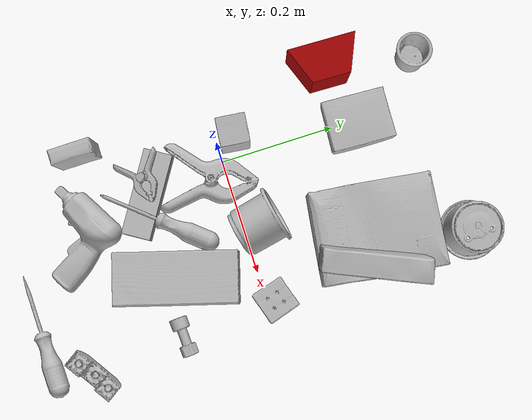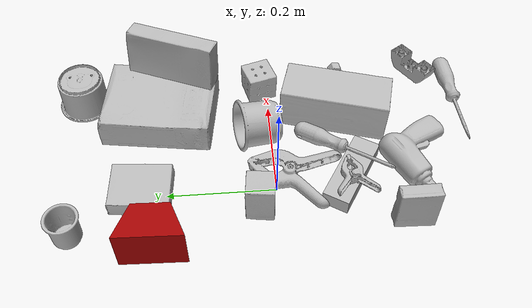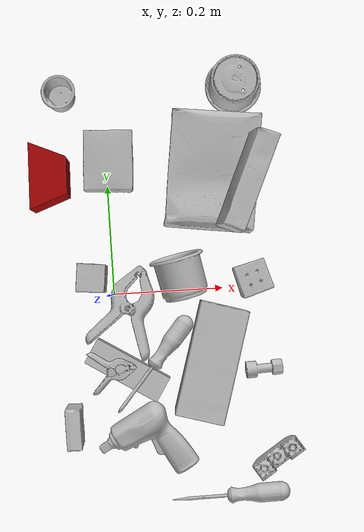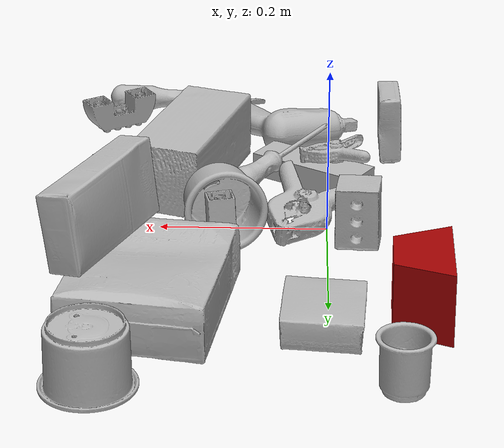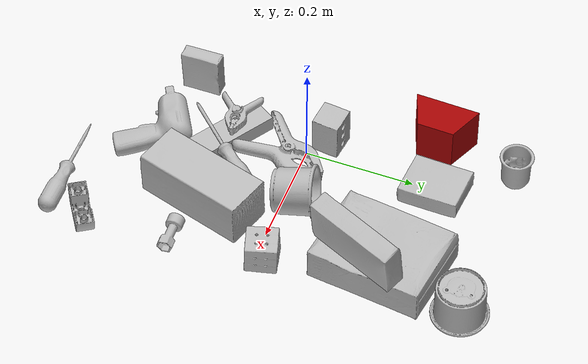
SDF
<sdf version="1.4">
  <world name="default">
    <light name="light1" type="point">
      <pose>0 0 1 0 0 0</pose>
      <diffuse>3 3 3 1</diffuse>
      <specular>3 3 3 1</specular>
    </light>
    <light name="light2" type="point">
      <pose>0 0.5 2 0 0 0</pose>
      <diffuse>1 1 1 1</diffuse>
      <specular>1 1 1 1</specular>
    </light>
    <light name="light3" type="point">
      <pose>0 0.5 2 0 0 0</pose>
      <diffuse>3 3 3 1</diffuse>
      <specular>3 3 3 1</specular>
    </light>
    <scene>
      <ambient>0.7 0.7 0.7</ambient>
    </scene>
    <model name="box21">
      <link name="link_box21">
        <collision name="default">
          <geometry>
            <mesh>
              <uri>model://cracker_box/collision_meshes/collision.obj</uri>
              <scale>1.0 1.0 1.0</scale>
            </mesh>
          </geometry>
          <surface>
            <friction>
              <ode>
                <mu>0.5</mu>
                <mu2>0.5</mu2>
              </ode>
            </friction>
          <contact>
        <ode>
            <max_vel>0</max_vel>
            <min_depth>0.0001</min_depth>
            <kp>1e8</kp>
        </ode>
    </contact></surface>
        </collision>
        <visual name="default">
          <geometry>
            <mesh>
              <uri>model://cracker_box/visual_meshes/visual.dae</uri>
              <scale>1.0 1.0 1.0</scale>
            </mesh>
          </geometry>
        </visual>
        <inertial>
          <mass>3.1344146728515625</mass>
          <pose>0.0009464123286306858 0.00025434247800149024 -0.0017029535956680775 -0.0003162077429326042 -0.011106488668875016 0.0025467950024750923</pose>
          <inertia>
            <ixx>0.0079725515</ixx>
            <iyy>0.01316425</iyy>
            <izz>0.01878659</izz>
            <ixy>0</ixy>
            <ixz>0</ixz>
            <iyz>0</iyz>
          </inertia>
        </inertial>
      </link>
      <pose>0.19378407299518585 0.21293425559997559 0.03640426695346832 -0.012429169213967476 -0.004437675405164345 1.4349709937104405</pose>
    </model>
    <model name="box22">
      <link name="link_box22">
        <collision name="default">
          <geometry>
            <mesh>
              <uri>model://jenga/collision_meshes/collision.obj</uri>
              <scale>1.0 1.0 1.0</scale>
            </mesh>
          </geometry>
          <surface>
            <friction>
              <ode>
                <mu>0.5</mu>
                <mu2>0.5</mu2>
              </ode>
            </friction>
          <contact>
        <ode>
            <max_vel>0</max_vel>
            <min_depth>0.0001</min_depth>
            <kp>1e8</kp>
        </ode>
    </contact></surface>
        </collision>
        <visual name="default">
          <geometry>
            <mesh>
              <uri>model://jenga/visual_meshes/visual.dae</uri>
              <scale>1.0 1.0 1.0</scale>
            </mesh>
          </geometry>
        </visual>
        <inertial>
          <mass>0.23869852721691132</mass>
          <pose>-2.502855807051674e-07 -0.0001025000965455547 -4.092339804628864e-05 0.0 -7.34215461761844e-07 0.0</pose>
          <inertia>
            <ixx>6.605367e-05</ixx>
            <iyy>0.00044757788</iyy>
            <izz>0.00047782745</izz>
            <ixy>0</ixy>
            <ixz>0</ixz>
            <iyz>0</iyz>
          </inertia>
        </inertial>
      </link>
      <pose>0.016384301707148552 -0.1386266052722931 0.014999989420175552 -3.1415920674941344 3.960022561069049e-07 2.5799689146695797</pose>
    </model>
    <model name="box23">
      <link name="link_box23">
        <collision name="default">
          <geometry>
            <mesh>
              <uri>model://rubiks_cube/collision_meshes/collision.obj</uri>
              <scale>1.0 1.0 1.0</scale>
            </mesh>
          </geometry>
          <surface>
            <friction>
              <ode>
                <mu>0.5</mu>
                <mu2>0.5</mu2>
              </ode>
            </friction>
          <contact>
        <ode>
            <max_vel>0</max_vel>
            <min_depth>0.0001</min_depth>
            <kp>1e8</kp>
        </ode>
    </contact></surface>
        </collision>
        <visual name="default">
          <geometry>
            <mesh>
              <uri>model://rubiks_cube/visual_meshes/visual.dae</uri>
              <scale>1.0 1.0 1.0</scale>
            </mesh>
          </geometry>
        </visual>
        <inertial>
          <mass>0.26229962706565857</mass>
          <pose>2.6721041649580002e-05 5.2569666877388954e-05 -7.264316082000732e-06 -0.05467189873579491 -0.09814109048128683 -0.0344550730209751</pose>
          <inertia>
            <ixx>0.00014493814</ixx>
            <iyy>0.00014426222</iyy>
            <izz>0.00014613918</izz>
            <ixy>0</ixy>
            <ixz>0</ixz>
            <iyz>0</iyz>
          </inertia>
        </inertial>
      </link>
      <pose>0.2545046806335449 0.01424402929842472 0.028678981587290764 -2.746629587725444e-06 -1.0991686030207448e-06 0.2858383043759741</pose>
    </model>
    <model name="cup1">
      <link name="link_cup1">
        <collision name="default">
          <geometry>
            <mesh>
              <uri>model://j_cups/collision_meshes/collision.obj</uri>
              <scale>1.0 1.0 1.0</scale>
            </mesh>
          </geometry>
          <surface>
            <friction>
              <ode>
                <mu>0.5</mu>
                <mu2>0.5</mu2>
              </ode>
            </friction>
          <contact>
        <ode>
            <max_vel>0</max_vel>
            <min_depth>0.0001</min_depth>
            <kp>1e8</kp>
        </ode>
    </contact></surface>
        </collision>
        <visual name="default">
          <geometry>
            <mesh>
              <uri>model://j_cups/visual_meshes/visual.dae</uri>
              <scale>1.0 1.0 1.0</scale>
            </mesh>
          </geometry>
        </visual>
        <inertial>
          <mass>0.10388943552970886</mass>
          <pose>0.0006164857186377048 0.0005398984649218619 -0.0013479008339345455 0.03030360356214998 0.03758024855654077 0.43868424196936845</pose>
          <inertia>
            <ixx>0.00015254253</ixx>
            <iyy>0.0001541288</iyy>
            <izz>0.00017584988</izz>
            <ixy>0</ixy>
            <ixz>0</ixz>
            <iyz>0</iyz>
          </inertia>
        </inertial>
      </link>
      <pose>0.2427220642566681 0.3689781427383423 0.03799779340624809 -3.1398483169703106 0.00636910314660384 -1.689462074647921</pose>
    </model>
    <model name="cup2">
      <link name="link_cup2">
        <collision name="default">
          <geometry>
            <mesh>
              <uri>model://i_cups/collision_meshes/collision.obj</uri>
              <scale>1.0 1.0 1.0</scale>
            </mesh>
          </geometry>
          <surface>
            <friction>
              <ode>
                <mu>0.5</mu>
                <mu2>0.5</mu2>
              </ode>
            </friction>
          <contact>
        <ode>
            <max_vel>0</max_vel>
            <min_depth>0.0001</min_depth>
            <kp>1e8</kp>
        </ode>
    </contact></surface>
        </collision>
        <visual name="default">
          <geometry>
            <mesh>
              <uri>model://i_cups/visual_meshes/visual.dae</uri>
              <scale>1.0 1.0 1.0</scale>
            </mesh>
          </geometry>
        </visual>
        <inertial>
          <mass>0.057485051453113556</mass>
          <pose>0.00011239853483857587 0.00016797262651380152 -0.000857901235576719 -0.028982969026390082 -0.03987335468246028 -0.34591562504163004</pose>
          <inertia>
            <ixx>7.958892e-05</ixx>
            <iyy>8.029015e-05</iyy>
            <izz>8.8953486e-05</izz>
            <ixy>0</ixy>
            <ixz>0</ixz>
            <iyz>0</iyz>
          </inertia>
        </inertial>
      </link>
      <pose>0.12447139620780945 0.02548564411699772 0.044780030846595764 -0.3537628891720898 -1.4433898868153023 -1.009461195296665</pose>
    </model>
    <model name="box11">
      <link name="link_box11">
        <collision name="default">
          <geometry>
            <mesh>
              <uri>model://wood_block/collision_meshes/collision.obj</uri>
              <scale>1.0 1.0 1.0</scale>
            </mesh>
          </geometry>
          <surface>
            <friction>
              <ode>
                <mu>0.5</mu>
                <mu2>0.5</mu2>
              </ode>
            </friction>
          <contact>
        <ode>
            <max_vel>0</max_vel>
            <min_depth>0.0001</min_depth>
            <kp>1e8</kp>
        </ode>
    </contact></surface>
        </collision>
        <visual name="default">
          <geometry>
            <mesh>
              <uri>model://wood_block/visual_meshes/visual.dae</uri>
              <scale>1.0 1.0 1.0</scale>
            </mesh>
          </geometry>
        </visual>
        <inertial>
          <mass>2.2218124866485596</mass>
          <pose>-5.813315510749817e-06 -0.000570809468626976 0.0002640858292579651 -0.052211005792275555 -0.005192694700552194 -0.006861375481739596</pose>
          <inertia>
            <ixx>0.0029731211</ixx>
            <iyy>0.009392092</iyy>
            <izz>0.009356961</izz>
            <ixy>0</ixy>
            <ixz>0</ixz>
            <iyz>0</iyz>
          </inertia>
        </inertial>
      </link>
      <pose>0.16994288563728333 -0.1297978162765503 0.04570065811276436 1.5681307358548149 -0.00693874925325533 1.2876783384805872</pose>
    </model>
    <model name="box12">
      <link name="link_box12">
        <collision name="default">
          <geometry>
            <mesh>
              <uri>model://sugar_box/collision_meshes/collision.obj</uri>
              <scale>1.0 1.0 1.0</scale>
            </mesh>
          </geometry>
          <surface>
            <friction>
              <ode>
                <mu>0.5</mu>
                <mu2>0.5</mu2>
              </ode>
            </friction>
          <contact>
        <ode>
            <max_vel>0</max_vel>
            <min_depth>0.0001</min_depth>
            <kp>1e8</kp>
        </ode>
    </contact></surface>
        </collision>
        <visual name="default">
          <geometry>
            <mesh>
              <uri>model://sugar_box/visual_meshes/visual.dae</uri>
              <scale>1.0 1.0 1.0</scale>
            </mesh>
          </geometry>
        </visual>
        <inertial>
          <mass>1.0162616968154907</mass>
          <pose>0.0010343727190047503 3.849109634757042e-05 -0.00036364805418998003 -0.0004046261550277283 0.0010506634055573133 0.0026153787890220875</pose>
          <inertia>
            <ixx>0.00084674655</ixx>
            <iyy>0.002736858</iyy>
            <izz>0.0032763465</izz>
            <ixy>0</ixy>
            <ixz>0</ixz>
            <iyz>0</iyz>
          </inertia>
        </inertial>
      </link>
      <pose>0.2475796639919281 0.18135634064674377 0.11600133031606674 1.6915877405267155 0.014084255159959565 1.156781541122049</pose>
    </model>
    <model name="box13">
      <link name="link_box13">
        <collision name="default">
          <geometry>
            <mesh>
              <uri>model://pudding_box/collision_meshes/collision.obj</uri>
              <scale>1.0 1.0 1.0</scale>
            </mesh>
          </geometry>
          <surface>
            <friction>
              <ode>
                <mu>0.5</mu>
                <mu2>0.5</mu2>
              </ode>
            </friction>
          <contact>
        <ode>
            <max_vel>0</max_vel>
            <min_depth>0.0001</min_depth>
            <kp>1e8</kp>
        </ode>
    </contact></surface>
        </collision>
        <visual name="default">
          <geometry>
            <mesh>
              <uri>model://pudding_box/visual_meshes/visual.dae</uri>
              <scale>1.0 1.0 1.0</scale>
            </mesh>
          </geometry>
        </visual>
        <inertial>
          <mass>0.24922829866409302</mass>
          <pose>0.0004894822486676276 0.0008067885646596551 -0.0005188828217796981 0.005213100397381839 -0.006603797317439846 0.02007982889363753</pose>
          <inertia>
            <ixx>0.00028173975</ixx>
            <iyy>0.00018955652</iyy>
            <izz>0.0004160624</izz>
            <ixy>0</ixy>
            <ixz>0</ixz>
            <iyz>0</iyz>
          </inertia>
        </inertial>
      </link>
      <pose>0.005813233554363251 0.24402843415737152 0.01972581259906292 0.022348647397915308 -0.011391652452175102 -0.05971295072841952</pose>
    </model>
    <model name="box14">
      <link name="link_box14">
        <collision name="default">
          <geometry>
            <mesh>
              <uri>model://gelatin_box/collision_meshes/collision.obj</uri>
              <scale>1.0 1.0 1.0</scale>
            </mesh>
          </geometry>
          <surface>
            <friction>
              <ode>
                <mu>0.5</mu>
                <mu2>0.5</mu2>
              </ode>
            </friction>
          <contact>
        <ode>
            <max_vel>0</max_vel>
            <min_depth>0.0001</min_depth>
            <kp>1e8</kp>
        </ode>
    </contact></surface>
        </collision>
        <visual name="default">
          <geometry>
            <mesh>
              <uri>model://gelatin_box/visual_meshes/visual.dae</uri>
              <scale>1.0 1.0 1.0</scale>
            </mesh>
          </geometry>
        </visual>
        <inertial>
          <mass>0.21856601536273956</mass>
          <pose>0.0004319618456065655 0.00011156871914863586 -0.00036403213744051754 -0.001050372093012012 -0.00475581868936722 0.016440559471878533</pose>
          <inertia>
            <ixx>0.00015428978</ixx>
            <iyy>0.000110208384</iyy>
            <izz>0.00023486343</izz>
            <ixy>0</ixy>
            <ixz>0</ixz>
            <iyz>0</iyz>
          </inertia>
        </inertial>
      </link>
      <pose>-0.08221116662025452 -0.23205719888210297 0.044736944139003754 1.6139766327446863 -0.00013836455195604788 1.5680708159231325</pose>
    </model>
    <model name="cup15">
      <link name="link_cup15">
        <collision name="default">
          <geometry>
            <mesh>
              <uri>model://b_cups/collision_meshes/collision.obj</uri>
              <scale>1.0 1.0 1.0</scale>
            </mesh>
          </geometry>
          <surface>
            <friction>
              <ode>
                <mu>0.5</mu>
                <mu2>0.5</mu2>
              </ode>
            </friction>
          <contact>
        <ode>
            <max_vel>0</max_vel>
            <min_depth>0.0001</min_depth>
            <kp>1e8</kp>
        </ode>
    </contact></surface>
        </collision>
        <visual name="default">
          <geometry>
            <mesh>
              <uri>model://b_cups/visual_meshes/visual.dae</uri>
              <scale>1.0 1.0 1.0</scale>
            </mesh>
          </geometry>
        </visual>
        <inertial>
          <mass>0.04691024869680405</mass>
          <pose>0.0005182002787478268 0.0018058588029816747 -0.0013381802709773183 0.1135631498080702 0.03872518969029637 -0.3456955043116969</pose>
          <inertia>
            <ixx>3.0706047e-05</ixx>
            <iyy>3.012308e-05</iyy>
            <izz>2.5838557e-05</izz>
            <ixy>0</ixy>
            <ixz>0</ixz>
            <iyz>0</iyz>
          </inertia>
        </inertial>
      </link>
      <pose>-0.07372456789016724 0.36679524183273315 0.03199617937207222 -0.007656602228355838 -0.0037860310653951216 2.8179129616065093</pose>
    </model>
    <model name="toy1">
      <link name="link_toy1">
        <collision name="default">
          <geometry>
            <mesh>
              <uri>model://e_lego_duplo/collision_meshes/collision.obj</uri>
              <scale>1.0 1.0 1.0</scale>
            </mesh>
          </geometry>
          <surface>
            <friction>
              <ode>
                <mu>0.5</mu>
                <mu2>0.5</mu2>
              </ode>
            </friction>
          <contact>
        <ode>
            <max_vel>0</max_vel>
            <min_depth>0.0001</min_depth>
            <kp>1e8</kp>
        </ode>
    </contact></surface>
        </collision>
        <visual name="default">
          <geometry>
            <mesh>
              <uri>model://e_lego_duplo/visual_meshes/visual.dae</uri>
              <scale>1.0 1.0 1.0</scale>
            </mesh>
          </geometry>
        </visual>
        <inertial>
          <mass>0.06732096523046494</mass>
          <pose>0.000325604691170156 0.00023485434940084815 0.001952146296389401 -0.02256754688519212 -6.825533823954374e-05 -0.007625149208872714</pose>
          <inertia>
            <ixx>1.40386455e-05</ixx>
            <iyy>5.761822e-05</iyy>
            <izz>5.6108554e-05</izz>
            <ixy>0</ixy>
            <ixz>0</ixz>
            <iyz>0</iyz>
          </inertia>
        </inertial>
      </link>
      <pose>0.280241459608078 -0.3132905066013336 0.021755369380116463 -3.125186175334505 -0.0024345003875509757 -2.566866043970509</pose>
    </model>
    <model name="toy2">
      <link name="link_toy2">
        <collision name="default">
          <geometry>
            <mesh>
              <uri>model://c_toy_airplane/collision_meshes/collision.obj</uri>
              <scale>1.0 1.0 1.0</scale>
            </mesh>
          </geometry>
          <surface>
            <friction>
              <ode>
                <mu>0.5</mu>
                <mu2>0.5</mu2>
              </ode>
            </friction>
          <contact>
        <ode>
            <max_vel>0</max_vel>
            <min_depth>0.0001</min_depth>
            <kp>1e8</kp>
        </ode>
    </contact></surface>
        </collision>
        <visual name="default">
          <geometry>
            <mesh>
              <uri>model://c_toy_airplane/visual_meshes/visual.dae</uri>
              <scale>1.0 1.0 1.0</scale>
            </mesh>
          </geometry>
        </visual>
        <inertial>
          <mass>0.036399733275175095</mass>
          <pose>-0.00023024277470540255 -4.4302899482318026e-07 -0.0060805329121649265 -0.006192184726307751 -0.016797944030005924 0.7654593329003626</pose>
          <inertia>
            <ixx>1.6714015e-05</ixx>
            <iyy>1.6666843e-05</iyy>
            <izz>3.9241195e-06</izz>
            <ixy>0</ixy>
            <ixz>0</ixz>
            <iyz>0</iyz>
          </inertia>
        </inertial>
      </link>
      <pose>0.2658720314502716 -0.15163353085517883 0.015057098120450974 1.8066261393007848 -1.4669746311782472 1.379706608229846</pose>
    </model>
    <model name="toy3">
      <link name="link_toy3">
        <collision name="default">
          <geometry>
            <mesh>
              <uri>model://foam_brick/collision_meshes/collision.obj</uri>
              <scale>1.0 1.0 1.0</scale>
            </mesh>
          </geometry>
          <surface>
            <friction>
              <ode>
                <mu>0.5</mu>
                <mu2>0.5</mu2>
              </ode>
            </friction>
          <contact>
        <ode>
            <max_vel>0</max_vel>
            <min_depth>0.0001</min_depth>
            <kp>1e8</kp>
        </ode>
    </contact></surface>
        </collision>
        <visual name="default">
          <geometry>
            <mesh>
              <uri>model://foam_brick/visual_meshes/visual.dae</uri>
              <scale>1.0 1.0 1.0</scale>
            </mesh>
          </geometry>
        </visual>
        <inertial>
          <mass>0.28719362616539</mass>
          <pose>-0.0002522472059354186 0.00034584346576593816 -0.0002532101352699101 -0.2940183114741006 0.017274439707053432 -0.0007449906726392561</pose>
          <inertia>
            <ixx>0.00012545152</ixx>
            <iyy>0.00020028985</iyy>
            <izz>0.00020283528</izz>
            <ixy>0</ixy>
            <ixz>0</ixz>
            <iyz>0</iyz>
          </inertia>
        </inertial>
      </link>
      <pose>-0.03600800409913063 0.032658651471138 0.03830837458372116 2.010304019979133 1.5521823268462247 -2.8153819067247783</pose>
    </model>
    <model name="toy4">
      <link name="link_toy4">
        <collision name="default">
          <geometry>
            <mesh>
              <uri>model://prism/collision_meshes/collision.obj</uri>
              <scale>1.0 1.0 1.0</scale>
            </mesh>
          </geometry>
          <surface>
            <friction>
              <ode>
                <mu>0.5</mu>
                <mu2>0.5</mu2>
              </ode>
            </friction>
          <contact>
        <ode>
            <max_vel>0</max_vel>
            <min_depth>0.0001</min_depth>
            <kp>1e8</kp>
        </ode>
    </contact></surface>
        </collision>
        <visual name="default">
          <geometry>
            <mesh>
              <uri>model://prism/visual_meshes/visual.dae</uri>
              <scale>1.0 1.0 1.0</scale>
            </mesh>
          </geometry>
        </visual>
        <inertial>
          <mass>0.7170383930206299</mass>
          <pose>-9.85359656624496e-05 -4.96157269935793e-07 -0.0033869098406285048 0.0 0.006559181231804993 0.0</pose>
          <inertia>
            <ixx>0.0006471183</ixx>
            <iyy>0.0007820508</iyy>
            <izz>0.0009579188</izz>
            <ixy>0</ixy>
            <ixz>0</ixz>
            <iyz>0</iyz>
          </inertia>
        </inertial>
      </link>
      <pose>-0.09981566667556763 0.2173129916191101 0.04158851131796837 1.583635341181303 4.2672032531133666e-07 1.5387230564076555</pose>
    </model>
    <model name="toy5">
      <link name="link_toy5">
        <collision name="default">
          <geometry>
            <mesh>
              <uri>model://b_toy_airplane/collision_meshes/collision.obj</uri>
              <scale>1.0 1.0 1.0</scale>
            </mesh>
          </geometry>
          <surface>
            <friction>
              <ode>
                <mu>0.5</mu>
                <mu2>0.5</mu2>
              </ode>
            </friction>
          <contact>
        <ode>
            <max_vel>0</max_vel>
            <min_depth>0.0001</min_depth>
            <kp>1e8</kp>
        </ode>
    </contact></surface>
        </collision>
        <visual name="default">
          <geometry>
            <mesh>
              <uri>model://b_toy_airplane/visual_meshes/visual.dae</uri>
              <scale>1.0 1.0 1.0</scale>
            </mesh>
          </geometry>
        </visual>
        <inertial>
          <mass>0.399619996547699</mass>
          <pose>0.005081363022327423 0.004015584941953421 0.009543066844344139 -0.04001809649421662 -0.04022184162979335 -0.5601502893443677</pose>
          <inertia>
            <ixx>0.0007419019</ixx>
            <iyy>0.00029654545</iyy>
            <izz>0.0009229998</izz>
            <ixy>0</ixy>
            <ixz>0</ixz>
            <iyz>0</iyz>
          </inertia>
        </inertial>
      </link>
      <pose>0.05723720043897629 -0.2585313022136688 0.035689081996679306 3.069570753645564 0.07405948490798925 -2.619034138010171</pose>
    </model>
    <model name="toy6">
      <link name="link_toy6">
        <collision name="default">
          <geometry>
            <mesh>
              <uri>model://f_lego_duplo/collision_meshes/collision.obj</uri>
              <scale>1.0 1.0 1.0</scale>
            </mesh>
          </geometry>
          <surface>
            <friction>
              <ode>
                <mu>0.5</mu>
                <mu2>0.5</mu2>
              </ode>
            </friction>
          <contact>
        <ode>
            <max_vel>0</max_vel>
            <min_depth>0.0001</min_depth>
            <kp>1e8</kp>
        </ode>
    </contact></surface>
        </collision>
        <visual name="default">
          <geometry>
            <mesh>
              <uri>model://f_lego_duplo/visual_meshes/visual.dae</uri>
              <scale>1.0 1.0 1.0</scale>
            </mesh>
          </geometry>
        </visual>
        <inertial>
          <mass>0.05315950885415077</mass>
          <pose>2.3694145056651905e-05 0.0001339314185315743 0.0018837872194126248 0.029838727868319145 -0.014424898970195728 -0.6756716124708322</pose>
          <inertia>
            <ixx>1.1232896e-05</ixx>
            <iyy>1.1332969e-05</iyy>
            <izz>9.750634e-06</izz>
            <ixy>0</ixy>
            <ixz>0</ixz>
            <iyz>0</iyz>
          </inertia>
        </inertial>
      </link>
      <pose>0.12640130519866943 0.015709424391388893 0.028589272871613503 -3.037757703588028 0.031356862682792176 0.18984490209655486</pose>
    </model>
    <model name="hardware1">
      <link name="link_hardware1">
        <collision name="default">
          <geometry>
            <mesh>
              <uri>model://flat_screwdriver/collision_meshes/collision.obj</uri>
              <scale>1.0 1.0 1.0</scale>
            </mesh>
          </geometry>
          <surface>
            <friction>
              <ode>
                <mu>0.5</mu>
                <mu2>0.5</mu2>
              </ode>
            </friction>
          <contact>
        <ode>
            <max_vel>0</max_vel>
            <min_depth>0.0001</min_depth>
            <kp>1e8</kp>
        </ode>
    </contact></surface>
        </collision>
        <visual name="default">
          <geometry>
            <mesh>
              <uri>model://flat_screwdriver/visual_meshes/visual.dae</uri>
              <scale>1.0 1.0 1.0</scale>
            </mesh>
          </geometry>
        </visual>
        <inertial>
          <mass>0.12191366404294968</mass>
          <pose>-0.0489187091588974 -0.0006576801533810794 -0.0006140916957519948 -0.5614853566550635 -0.0032337267722331534 0.006982277608032515</pose>
          <inertia>
            <ixx>1.4404012e-05</ixx>
            <iyy>0.00018286215</iyy>
            <izz>0.00018277747</izz>
            <ixy>0</ixy>
            <ixz>0</ixz>
            <iyz>0</iyz>
          </inertia>
        </inertial>
      </link>
      <pose>0.1929124891757965 -0.379487544298172 0.015210773795843124 1.7961500907603165 0.03882280027589031 -3.1077097107980842</pose>
    </model>
    <model name="hardware2">
      <link name="link_hardware2">
        <collision name="default">
          <geometry>
            <mesh>
              <uri>model://medium_clamp/collision_meshes/collision.obj</uri>
              <scale>1.0 1.0 1.0</scale>
            </mesh>
          </geometry>
          <surface>
            <friction>
              <ode>
                <mu>0.5</mu>
                <mu2>0.5</mu2>
              </ode>
            </friction>
          <contact>
        <ode>
            <max_vel>0</max_vel>
            <min_depth>0.0001</min_depth>
            <kp>1e8</kp>
        </ode>
    </contact></surface>
        </collision>
        <visual name="default">
          <geometry>
            <mesh>
              <uri>model://medium_clamp/visual_meshes/visual.dae</uri>
              <scale>1.0 1.0 1.0</scale>
            </mesh>
          </geometry>
        </visual>
        <inertial>
          <mass>0.018204163759946823</mass>
          <pose>0.005390994716435671 0.00039532413939014077 -0.0001222158025484532 -0.0012269240735234023 0.0025845026557488396 0.03820772126630794</pose>
          <inertia>
            <ixx>4.959469e-06</ixx>
            <iyy>7.217431e-06</iyy>
            <izz>1.1117007e-05</izz>
            <ixy>0</ixy>
            <ixz>0</ixz>
            <iyz>0</iyz>
          </inertia>
        </inertial>
      </link>
      <pose>-0.01219791080802679 -0.1365692913532257 0.0435342863202095 0.07671054722134525 0.08544498582838628 0.09187373827121158</pose>
    </model>
    <model name="hardware3">
      <link name="link_hardware3">
        <collision name="default">
          <geometry>
            <mesh>
              <uri>model://large_clamp/collision_meshes/collision.obj</uri>
              <scale>1.0 1.0 1.0</scale>
            </mesh>
          </geometry>
          <surface>
            <friction>
              <ode>
                <mu>0.5</mu>
                <mu2>0.5</mu2>
              </ode>
            </friction>
          <contact>
        <ode>
            <max_vel>0</max_vel>
            <min_depth>0.0001</min_depth>
            <kp>1e8</kp>
        </ode>
    </contact></surface>
        </collision>
        <visual name="default">
          <geometry>
            <mesh>
              <uri>model://large_clamp/visual_meshes/visual.dae</uri>
              <scale>1.0 1.0 1.0</scale>
            </mesh>
          </geometry>
        </visual>
        <inertial>
          <mass>0.18972517549991608</mass>
          <pose>0.006369356997311115 0.0003585676895454526 -0.00018398048996459693 -0.002133071569430183 0.00967158655684735 0.02663316926682878</pose>
          <inertia>
            <ixx>0.0001673895</ixx>
            <iyy>0.00031788155</iyy>
            <izz>0.00045985627</izz>
            <ixy>0</ixy>
            <ixz>0</ixz>
            <iyz>0</iyz>
          </inertia>
        </inertial>
      </link>
      <pose>0.0256786085665226 -0.028758427128195763 0.018565895035862923 -0.08511528841116692 0.046757957670085996 1.1920489697052719</pose>
    </model>
    <model name="hardware4">
      <link name="link_hardware4">
        <collision name="default">
          <geometry>
            <mesh>
              <uri>model://phillips_screwdriver/collision_meshes/collision.obj</uri>
              <scale>1.0 1.0 1.0</scale>
            </mesh>
          </geometry>
          <surface>
            <friction>
              <ode>
                <mu>0.5</mu>
                <mu2>0.5</mu2>
              </ode>
            </friction>
          <contact>
        <ode>
            <max_vel>0</max_vel>
            <min_depth>0.0001</min_depth>
            <kp>1e8</kp>
        </ode>
    </contact></surface>
        </collision>
        <visual name="default">
          <geometry>
            <mesh>
              <uri>model://phillips_screwdriver/visual_meshes/visual.dae</uri>
              <scale>1.0 1.0 1.0</scale>
            </mesh>
          </geometry>
        </visual>
        <inertial>
          <mass>0.10424148291349411</mass>
          <pose>-0.047771818935871124 0.0010362300090491772 -0.000455554953077808 -0.15717568897110376 0.005850990280187748 -0.0021567475529960492</pose>
          <inertia>
            <ixx>1.2247306e-05</ixx>
            <iyy>0.00015355984</iyy>
            <izz>0.00015369034</izz>
            <ixy>0</ixy>
            <ixz>0</ixz>
            <iyz>0</iyz>
          </inertia>
        </inertial>
      </link>
      <pose>0.06870358437299728 -0.12919305264949799 0.03103461116552353 -3.0826745343354016 -0.1599408089433022 -2.2811539560802343</pose>
    </model>
  <physics type="ode">
      <max_contacts>50</max_contacts>
      <ode>
        <solver>
          <type>quick</type>
          <iters>75</iters>
        </solver>
        <constraints>
          <contact_max_correcting_vel>0</contact_max_correcting_vel>
          <contact_surface_layer>0</contact_surface_layer>
        </constraints>
      </ode>
    </physics></world>
</sdf>
